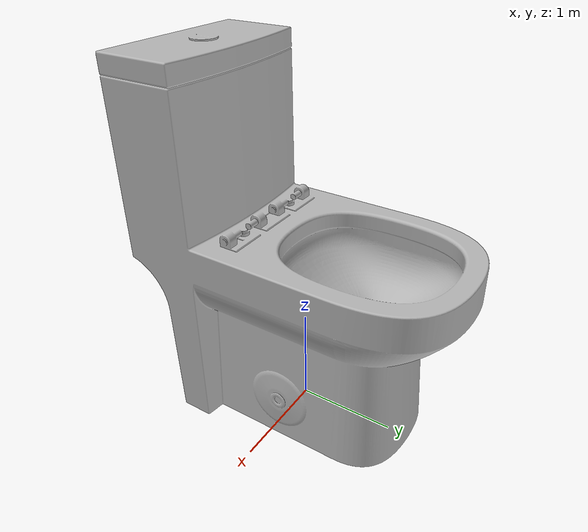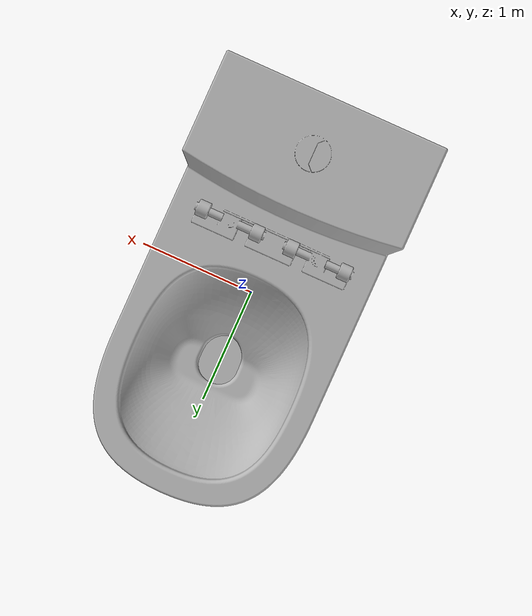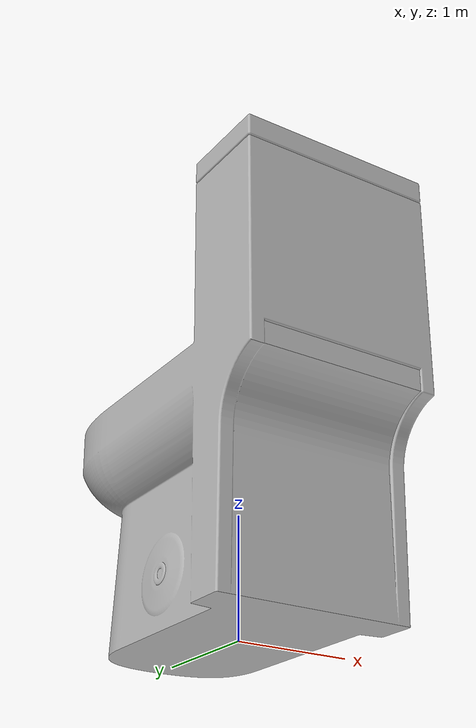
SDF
<?xml version="1.0" ?>
<sdf version="1.5">
  <model name="toilet">
    <static>true</static>
    <pose>0 0 0 0 0 0</pose>

    <link name="link">
      <pose>0 0 0 0 0 0</pose>

      <visual name="visual">
        <geometry>
          <mesh>
            <uri>model://toilet/meshes/toilet.stl</uri>
            <scale>0.01 0.01 0.01</scale>
          </mesh>
        </geometry>
      </visual>

      <collision name="collision">
        <geometry>
          <mesh>
            <uri>model://toilet/meshes/toilet.stl</uri>
            <scale>0.01 0.01 0.01</scale>
          </mesh>
        </geometry>
      </collision>

    </link>
  </model>
</sdf>
